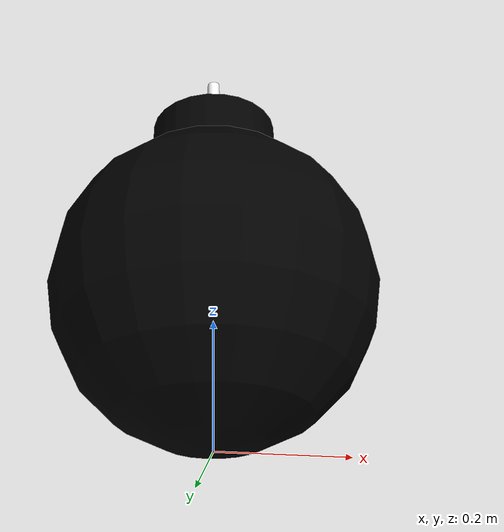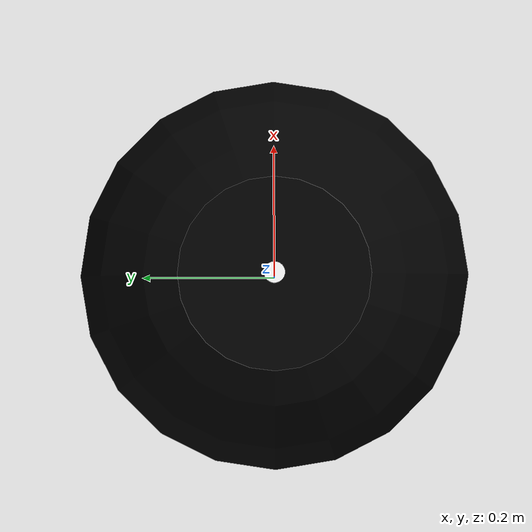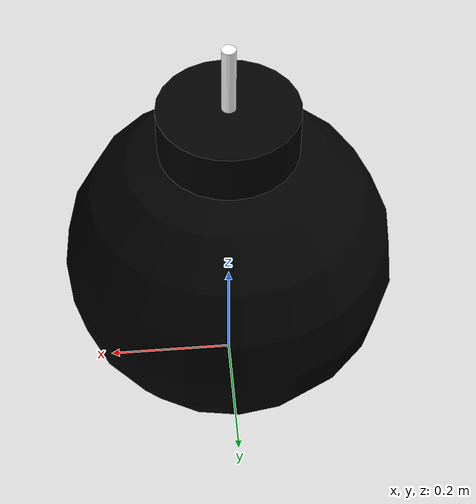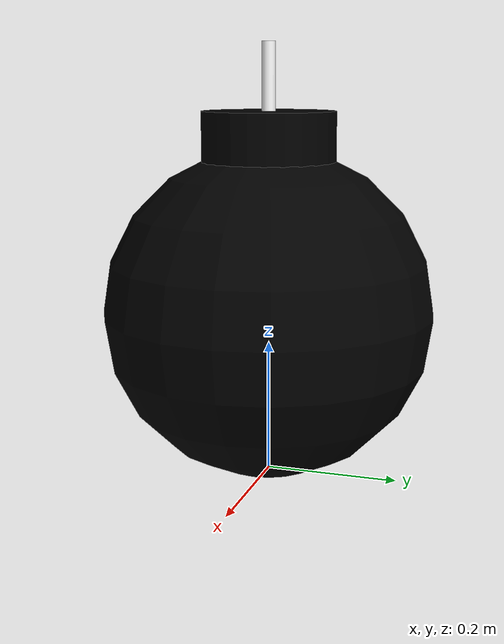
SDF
<?xml version='1.0'?>
<sdf version='1.4'>
  <model name="bomb">
	<static>true</static>
	<link name='chassis'>
	<pose>0 0 0.25 0 0 0</pose>

	<visual name='visual'>
    <pose>0 0 0.2 0 0 0</pose>
	  <geometry>
		<cylinder>
		  <radius>.1</radius>
		  <length>.2</length>
		</cylinder>
	  </geometry>
      <material>
        <ambient>0 0 0 1</ambient>
        <diffuse>0 0 0 1</diffuse>
        <specular>0.1 0.1 0.1 1</specular>
        <emissive>0 0 0 0</emissive>
      </material>
	</visual>

	<visual name='visual2'>
	  <geometry>
		<sphere>
		  <radius>.25</radius>
		</sphere>
	  </geometry>
      <material>
        <ambient>0 0 0 1</ambient>
        <diffuse>0 0 0 1</diffuse>
        <specular>0.1 0.1 0.1 1</specular>
        <emissive>0 0 0 0</emissive>
      </material>
	</visual>

	<visual name='visual3'>
    <pose>0 0 0.3 0 0 0</pose>
	  <geometry>
		<cylinder>
		  <radius>.01</radius>
		  <length>.2</length>
		</cylinder>
	  </geometry>
      <material>
        <ambient>1 1 1 1</ambient>
        <diffuse>1 1 1 1</diffuse>
        <specular>0.1 0.1 0.1 1</specular>
        <emissive>0 0 0 0</emissive>
      </material>
	</visual>

	</link>
	</model>
</sdf>
